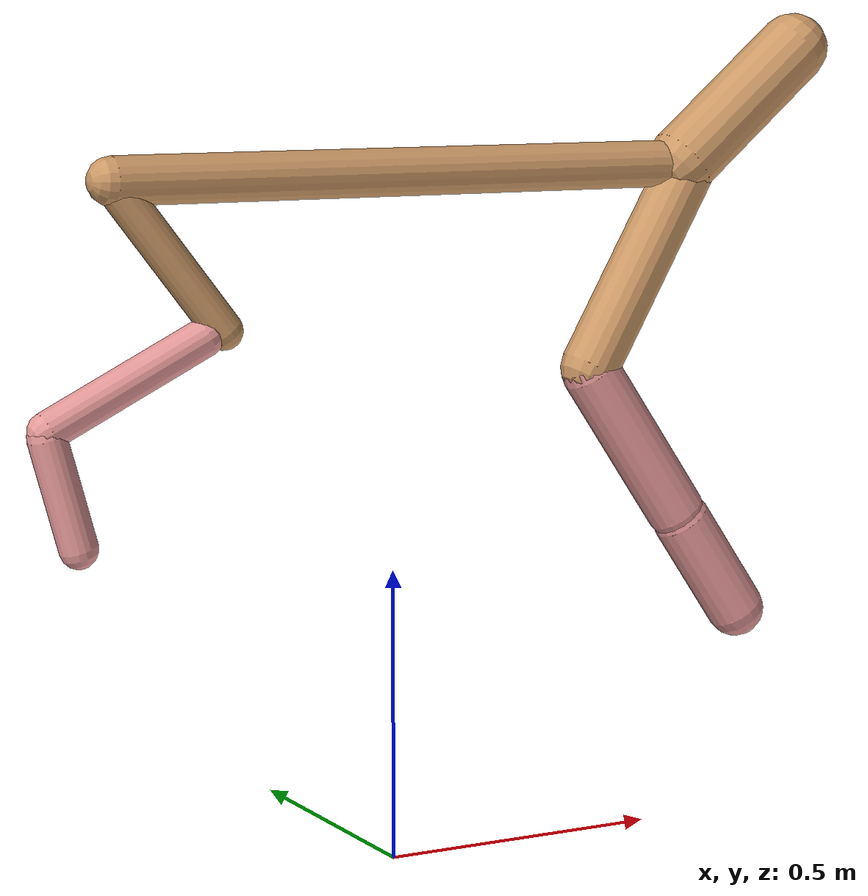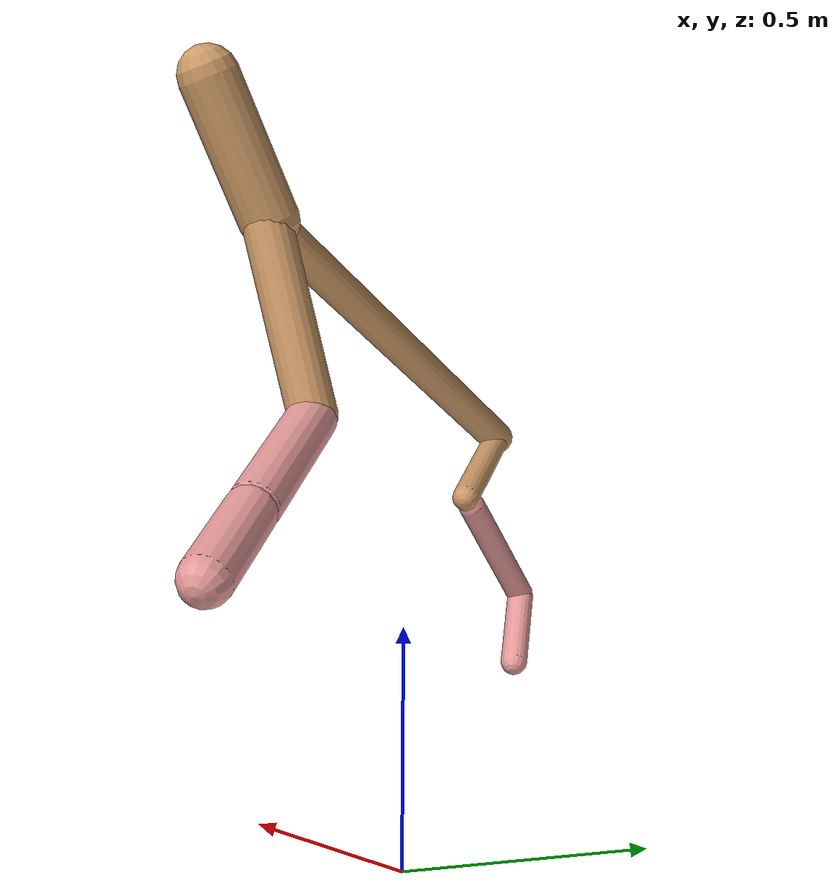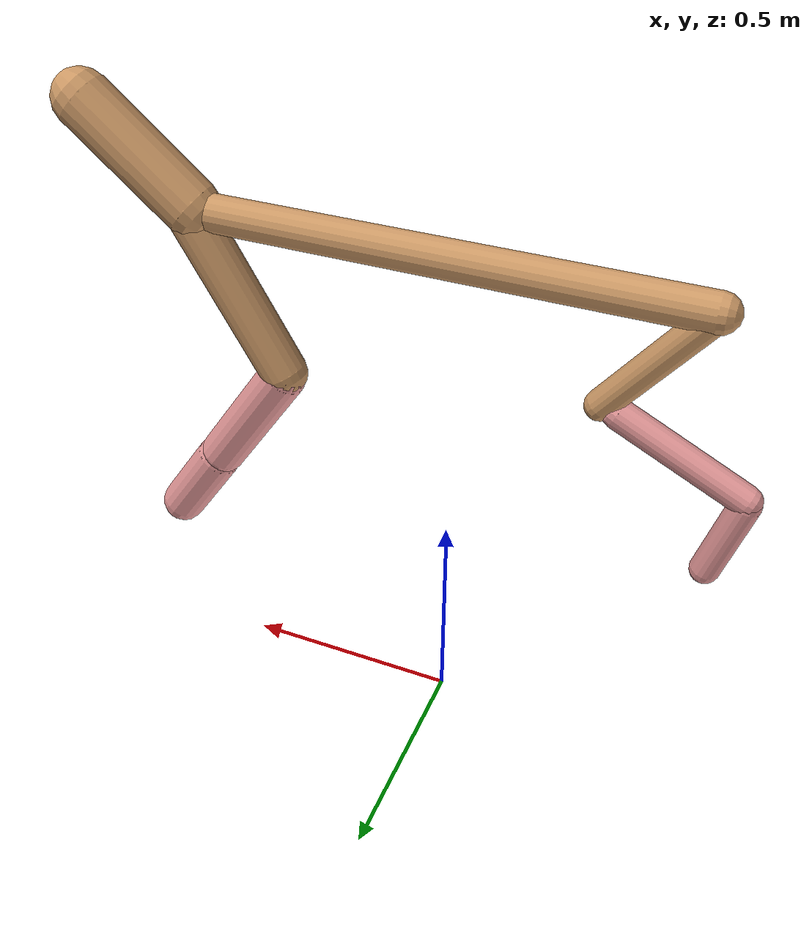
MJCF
<mujoco model="cheetah">
  <compiler angle="radian" coordinate="local" inertiafromgeom="true" settotalmass="14" />
  <default>
    <joint armature=".1" damping=".01" limited="true" solimplimit="0 .8 .03" solreflimit=".02 1" stiffness="8" />
    <geom conaffinity="0" condim="3" contype="1" friction="0.8 .1 .1" rgba="0.8 0.6 .4 1" solimp="0.0 0.8 0.01" solref="0.02 1" />
    <motor ctrllimited="true" ctrlrange="-1 1" />
  </default>
  <size nstack="300000" nuser_geom="1" />
  <option gravity="0 0 -9.81" timestep="0.01" />
  <worldbody>
    <body name="torso" pos="0.0 0.0 1.1740026283897425">
      <joint armature="0" axis="1 0 0" damping="0" limited="false" name="ignorex" pos="0 0 0" stiffness="0" type="slide" />
      <joint armature="0" axis="0 0 1" damping="0" limited="false" name="ignorez" pos="0 0 0" stiffness="0" type="slide" />
      <joint armature="0" axis="0 1 0" damping="0" limited="false" name="ignorey" pos="0 0 0" stiffness="0" type="hinge" />
      <geom fromto="-0.5 0.0 0.0 0.5865723244952854 0.0 0.0" name="torso" size="0.04039017078563011" type="capsule" />
      <geom axisangle="0 1 0 .87" name="head" pos="0.6865723244952854 0.0 0.1" size="0.062251765753253197 0.15" type="capsule" />

      <body name="bthigh" pos="-.5 0 0">
        <joint axis="0 1 0" damping="6" name="bthigh" pos="0 0 0" range="-.52 1.05" stiffness="240" type="hinge" />
        <geom axisangle="0 1 0 -3.8" name="bthigh" pos="0.10144504392497063 0.0 -0.13187855710246182" size="0.0322 0.14737004825526911" type="capsule" />
        <body name="bshin" pos="0.16289008784994125 0.0 -0.25375711420492364">
          <joint axis="0 1 0" damping="4.5" name="bshin" pos="0 0 0" range="-.785 .785" stiffness="180" type="hinge" />
          <geom axisangle="0 1 0 -2.03" name="bshin" pos="-0.1421929333829255 0.0 -0.07109646669146275" rgba="0.9 0.6 0.6 1" size="0.0322 0.15245177405717494" type="capsule" />
          <body name="bfoot" pos="-0.284385866765851 0.0 -0.1421929333829255">
            <joint axis="0 1 0" damping="3" name="bfoot" pos="0 0 0" range="-.4 .785" stiffness="120" type="hinge" />
            <geom axisangle="0 1 0 -.27" name="bfoot" pos="0.030453973000840358 0.0 -0.0984678460360505" rgba="0.9 0.6 0.6 1" size="0.0322 0.09553644507582965" type="capsule" />
            <inertial mass="10" />
          </body>
        </body>
      </body>
      <body name="fthigh" pos="0.5865723244952854 0.0 0.0">
        <joint axis="0 1 0" damping="4.5" name="fthigh" pos="0 0 0" range="-1.5 0.8" stiffness="180" type="hinge" />
        <geom axisangle="0 1 0 .52" name="fthigh" pos="-0.10322721059856099 0.0 -0.17696093245467598" size="0.051172435873737536 0.19894388030945162" type="capsule" />
        <body name="fshin" pos="-0.20645442119712198 0.0 -0.35392186490935196">
          <joint axis="0 1 0" damping="3" name="fshin" pos="0 0 0" range="-1.2 1.1" stiffness="120" type="hinge" />
          <geom axisangle="0 1 0 -.6" name="fshin" pos="0.09577149634987109 0.0 -0.13260668725366764" rgba="0.9 0.6 0.6 1" size="0.051172435873737536 0.158556776787984" type="capsule" />
          <body name="ffoot" pos="0.19154299269974218 0.0 -0.2652133745073353">
            <joint axis="0 1 0" damping="1.5" name="ffoot" pos="0 0 0" range="-3.1 -0.3" stiffness="60" type="hinge" />
            <geom axisangle="0 1 0 -.6" name="ffoot" pos="0.06376823888316038 0.0 -0.09919503826269394" rgba="0.9 0.6 0.6 1" size="0.051172435873737536 0.10470730542602717" type="capsule" />
            <inertial mass="10" />
          </body>
        </body>
      </body>
    </body>
  </worldbody>
  <actuator>
    <motor gear="120" joint="bthigh" name="bthigh" />
    <motor gear="90" joint="bshin" name="bshin" />
    <motor gear="60" joint="bfoot" name="bfoot" />
    <motor gear="120" joint="fthigh" name="fthigh" />
    <motor gear="60" joint="fshin" name="fshin" />
    <motor gear="30" joint="ffoot" name="ffoot" />
  </actuator>
</mujoco>
